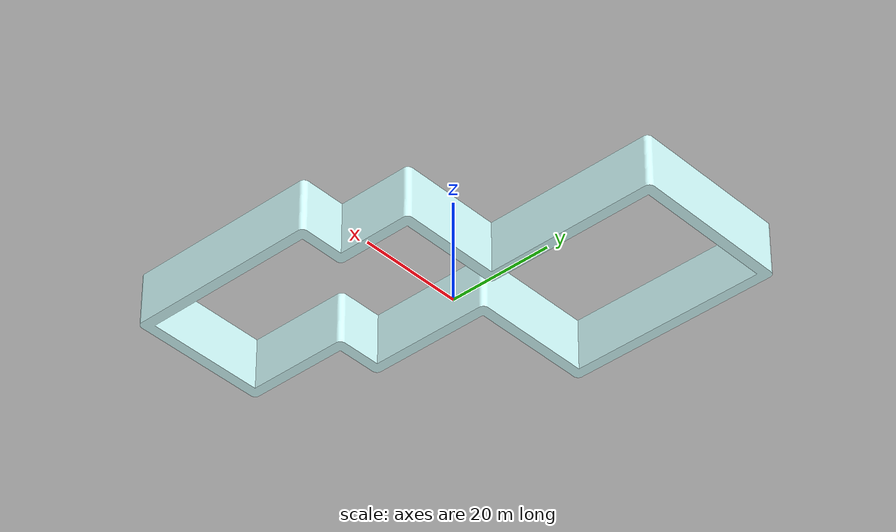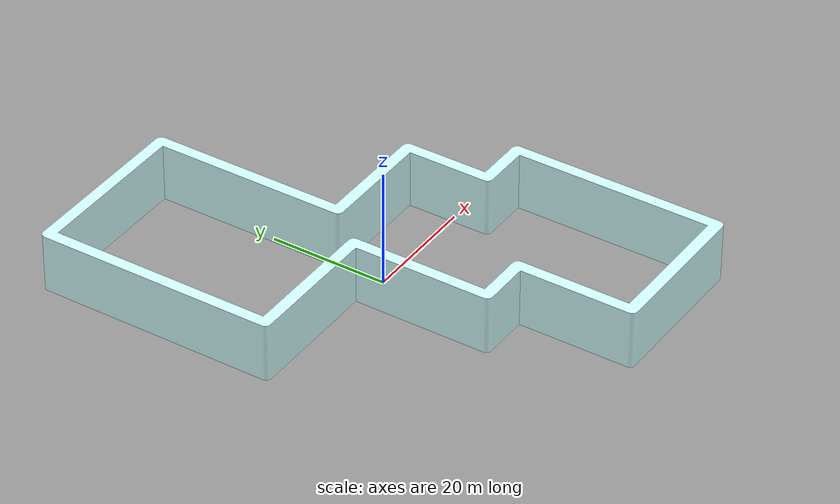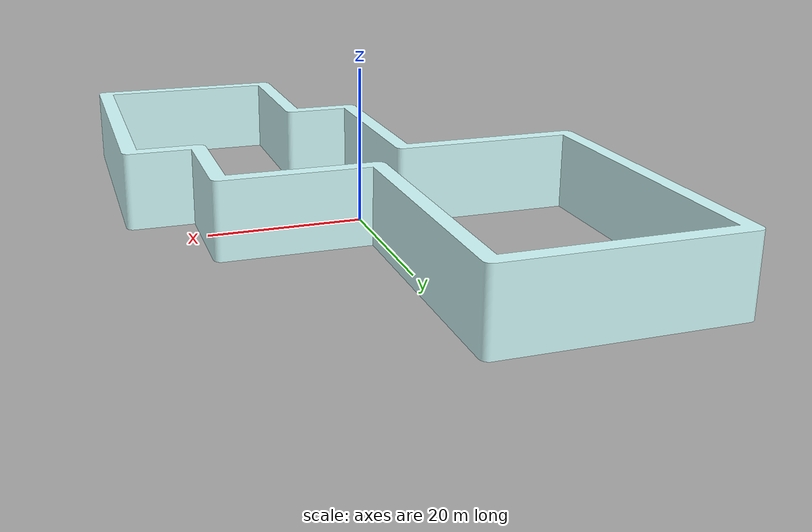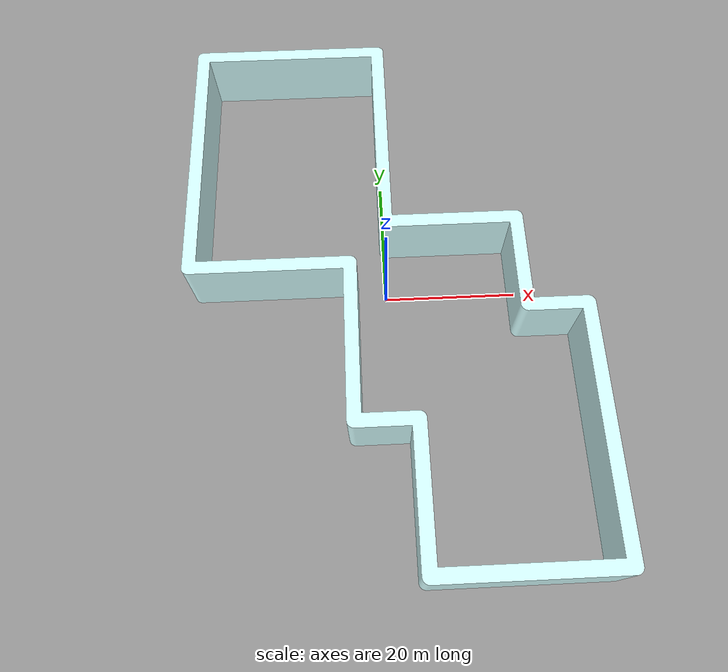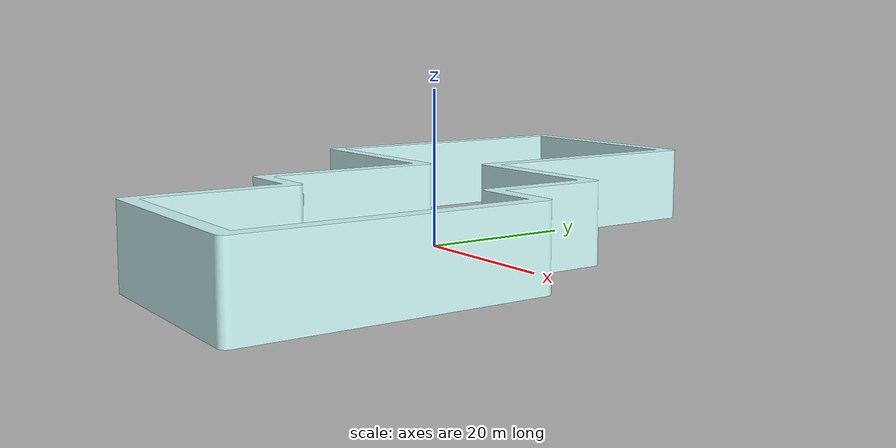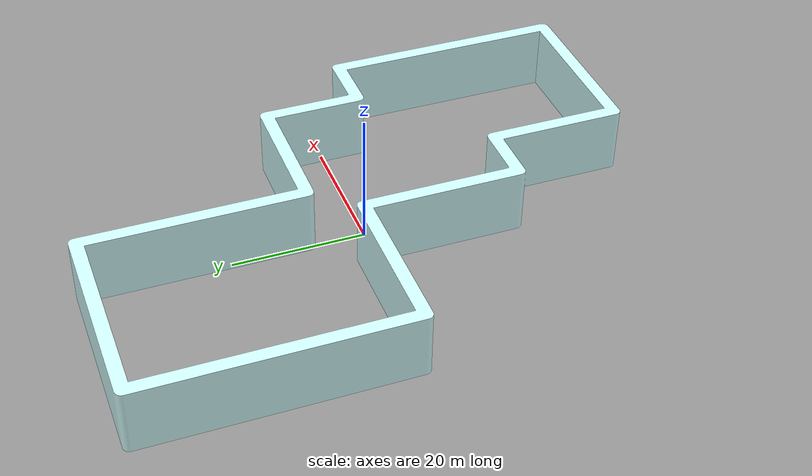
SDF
<?xml version="1.0" ?>
<sdf version="1.6">
  <model name="pcg_walls_test_walls">
    <allow_auto_disable>0</allow_auto_disable>
    <link name="mesh">
      <kinematic>0</kinematic>
      <pose frame="">0 0 0 0 -0 0</pose>
      <gravity>1</gravity>
      <self_collide>0</self_collide>
      <collision name="collision">
        <geometry>
          <mesh>
            <scale>1 1 1</scale>
            <uri>file:///home/ross/Projects/AIIA/risk_metric_maps/notebooks/teststl/meshes/pcg_walls_test_walls/meshes/qUwYeQXbgT.stl</uri>
          </mesh>
        </geometry>
        <max_contacts>20</max_contacts>
        <pose frame="">3.80686 -1.41448 -5 0 -0 0</pose>
      </collision>
      <visual name="visual">
        <geometry>
          <mesh>
            <scale>1 1 1</scale>
            <uri>file:///home/ross/Projects/AIIA/risk_metric_maps/notebooks/teststl/meshes/pcg_walls_test_walls/meshes/yDTLilNbdR.stl</uri>
          </mesh>
        </geometry>
        <material>
          <diffuse>0.83137254902 1.0 1.0 1</diffuse>
          <ambient>0.831373 1 1 1</ambient>
        </material>
        <cast_shadows>1</cast_shadows>
        <transparency>0.0</transparency>
        <pose frame="">3.80686 -1.41448 -5 0 -0 0</pose>
      </visual>
    </link>
    <pose frame="">0 0 5 0 -0 0</pose>
    <static>1</static>
    <self_collide>0</self_collide>
  </model>
</sdf>
